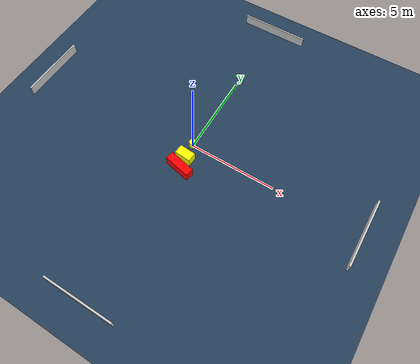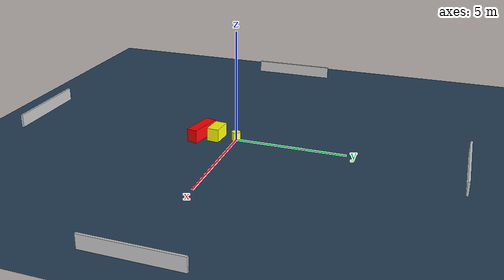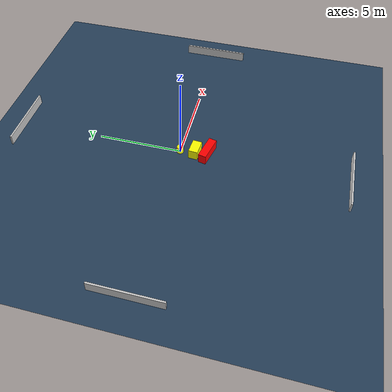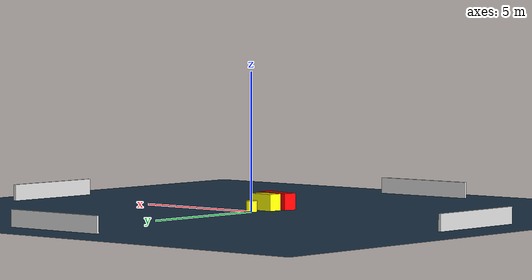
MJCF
<?xml version="1.0" ?>
<mujoco model="generated_environment">
  <option timestep="0.01" integrator="RK4" cone="elliptic"/>
  <default>
    <geom density="1"/>
  </default>
  <asset>
    <texture builtin="gradient" height="3072" name="skybox" rgb1="0.3 0.5 0.7" rgb2="0 0 0" type="skybox" width="512"/>
    <texture builtin="checker" height="300" name="groundplane" rgb1="0.2 0.3 0.4" rgb2="0.1 0.2 0.3" type="2d" width="300"/>
    <material name="groundplane" reflectance="0.2" texrepeat="5 5" texture="groundplane"/>
  </asset>
  <worldbody>
    <light dir="0 0 -1" directional="true" pos="0 0 1.5"/>
    <geom condim="3" friction="0.5 0.005 0.001" material="groundplane" name="floor" pos="0 0 0" size="0 0 0.05" type="plane"/>
    <body name="walls">
      <geom name="wall_1" condim="4" pos="-10.0 0.0 0.3" rgba="0.800000011920929 0.800000011920929 0.800000011920929 1.0" size="0.05 2.0 0.3" type="box"/>
      <geom name="wall_2" condim="4" pos="10.0 0.0 0.3" rgba="0.800000011920929 0.800000011920929 0.800000011920929 1.0" size="0.05 2.0 0.3" type="box"/>
      <geom name="wall_3" condim="4" pos="0.0 -10.0 0.3" rgba="0.800000011920929 0.800000011920929 0.800000011920929 1.0" size="2.0 0.05 0.3" type="box"/>
      <geom name="wall_4" condim="4" pos="0.0 10.0 0.3" rgba="0.800000011920929 0.800000011920929 0.800000011920929 1.0" size="2.0 0.05 0.3" type="box"/>
    </body>
    <body name="robot">
      <joint name="joint_x" type="slide" pos="0 0 0" axis="1 0 0"/>
      <joint name="joint_y" type="slide" pos="0 0 0" axis="0 1 0"/>
      <geom name="robot" type="cylinder" pos="0.0 0.0 0.2" size="0.2 0.2 0.0" mass="5.0" friction="1.0 0.005 0.0001" condim="4" rgba="1.0 1.0 0.0 1.0"/>
    </body>
    <body name="obstacle_1_movable">
      <geom name="obstacle_1_movable" condim="4" pos="0.07168382177314235 -0.9000803958655148 0.3" euler="0 0 355.52728145348715" friction="0.0 0.005 0.001" rgba="1.0 1.0 0.0 1.0" size="0.46273103777461566 0.2725215172154428 0.3" type="box" mass="0.1"/>
      <joint type="free"/>
    </body>
    <body name="obstacle_2_static">
      <geom name="obstacle_2_static" condim="4" pos="0.16862717868678986 -1.6166675343844301 0.3" euler="0 0 167.69304848377172" friction="0.0 0.005 0.001" rgba="1.0 0.0 0.0 1.0" size="0.7632483080446042 0.23996130840603433 0.3" type="box"/>
    </body>
  </worldbody>
  <actuator>
    <motor name="actuator_x" joint="joint_x" gear="1" ctrlrange="-1 1"/>
    <motor name="actuator_y" joint="joint_y" gear="1" ctrlrange="-1 1"/>
  </actuator>
</mujoco>
